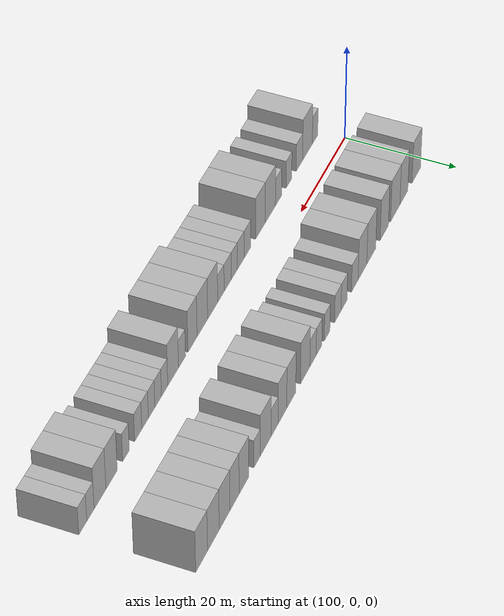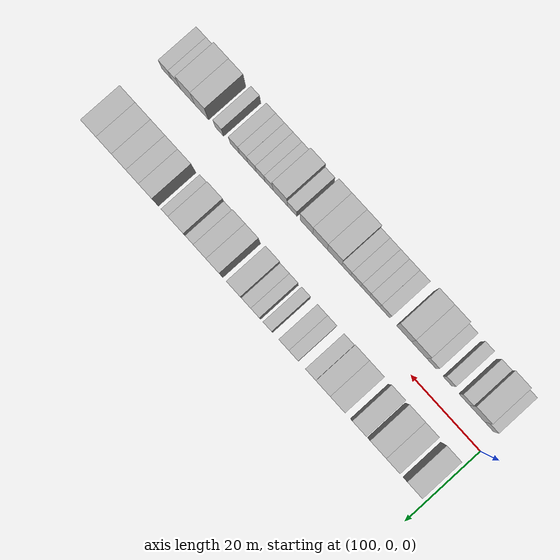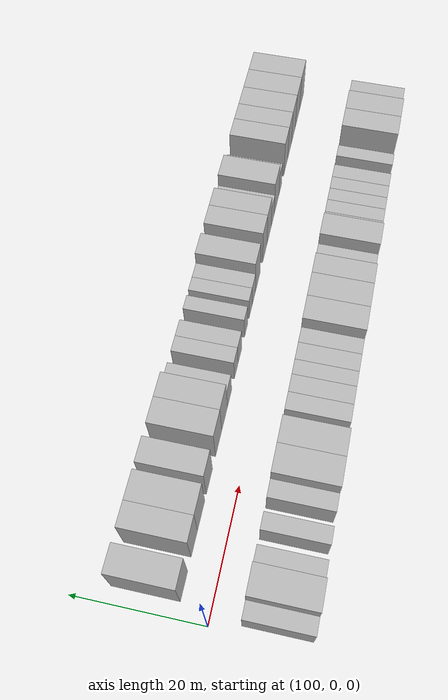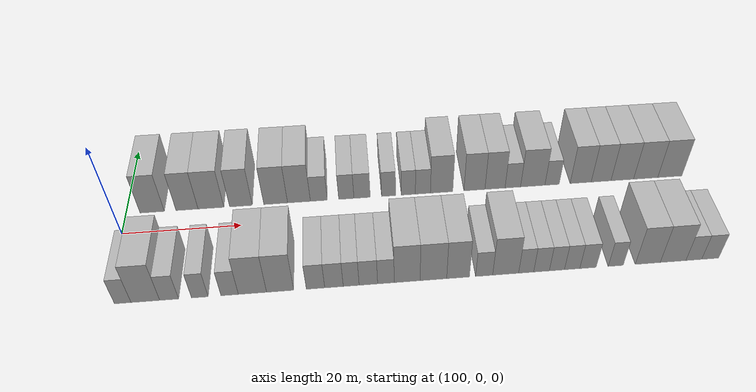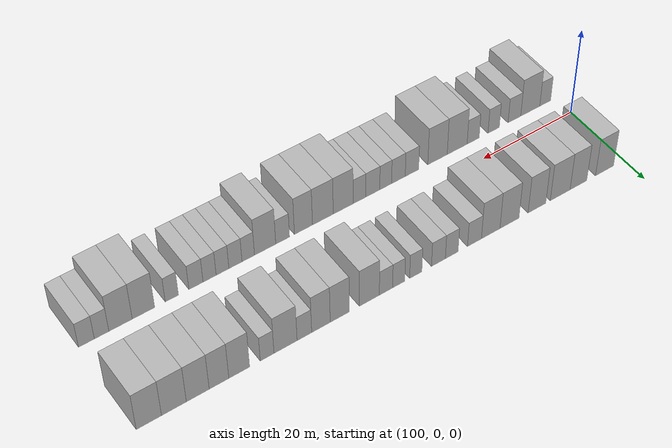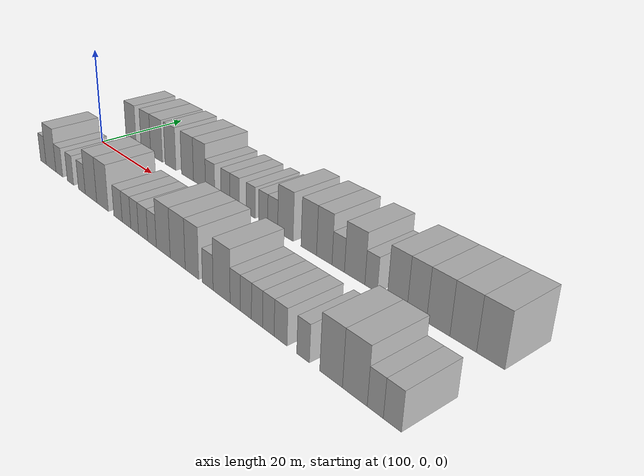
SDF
<sdf version="1.6">
 <world name="default">
  <model name="building_26">
   <static>1</static>
   <pose>104.4458 9.5000 0 0.000000 0.000000 1.570796</pose>
   <link name="link">
    <pose>0 0 4.50 0 0 0</pose>
    <collision name="collision"><geometry><box><size>10.0000 4.1483 9.0000</size></box></geometry></collision>
    <visual name="visual">
     <cast_shadows>0</cast_shadows>
     <geometry><box><size>10.0000 4.1483 9.0000</size></box></geometry>
     <material>
      <script>
       <uri>model://HANNAS_wall/materials/scripts</uri>
       <uri>model://HANNAS_wall/materials/textures</uri>
       <name>vrc/HANNAS_wall</name>
      </script>
     </material>
    </visual>
   </link>
  </model>
  <model name="building_27">
   <static>1</static>
   <pose>110.4118 9.5000 0 0.000000 0.000000 1.570796</pose>
   <link name="link">
    <pose>0 0 4.50 0 0 0</pose>
    <collision name="collision"><geometry><box><size>10.0000 3.7836 9.0000</size></box></geometry></collision>
    <visual name="visual">
     <cast_shadows>0</cast_shadows>
     <geometry><box><size>10.0000 3.7836 9.0000</size></box></geometry>
     <material>
      <script>
       <uri>model://HANNAS_wall/materials/scripts</uri>
       <uri>model://HANNAS_wall/materials/textures</uri>
       <name>vrc/HANNAS_wall</name>
      </script>
     </material>
    </visual>
   </link>
  </model>
  <model name="building_28">
   <static>1</static>
   <pose>114.5267 9.5000 0 0.000000 0.000000 1.570796</pose>
   <link name="link">
    <pose>0 0 4.50 0 0 0</pose>
    <collision name="collision"><geometry><box><size>10.0000 4.4463 9.0000</size></box></geometry></collision>
    <visual name="visual">
     <cast_shadows>0</cast_shadows>
     <geometry><box><size>10.0000 4.4463 9.0000</size></box></geometry>
     <material>
      <script>
       <uri>model://HANNAS_wall/materials/scripts</uri>
       <uri>model://HANNAS_wall/materials/textures</uri>
       <name>vrc/HANNAS_wall</name>
      </script>
     </material>
    </visual>
   </link>
  </model>
  <model name="building_29">
   <static>1</static>
   <pose>119.7096 9.5000 0 0.000000 0.000000 1.570796</pose>
   <link name="link">
    <pose>0 0 4.50 0 0 0</pose>
    <collision name="collision"><geometry><box><size>10.0000 3.9195 9.0000</size></box></geometry></collision>
    <visual name="visual">
     <cast_shadows>0</cast_shadows>
     <geometry><box><size>10.0000 3.9195 9.0000</size></box></geometry>
     <material>
      <script>
       <uri>model://HANNAS_wall/materials/scripts</uri>
       <uri>model://HANNAS_wall/materials/textures</uri>
       <name>vrc/HANNAS_wall</name>
      </script>
     </material>
    </visual>
   </link>
  </model>
  <model name="building_30">
   <static>1</static>
   <pose>125.7354 9.5000 0 0.000000 0.000000 1.570796</pose>
   <link name="link">
    <pose>0 0 4.50 0 0 0</pose>
    <collision name="collision"><geometry><box><size>10.0000 4.1321 9.0000</size></box></geometry></collision>
    <visual name="visual">
     <cast_shadows>0</cast_shadows>
     <geometry><box><size>10.0000 4.1321 9.0000</size></box></geometry>
     <material>
      <script>
       <uri>model://HANNAS_wall/materials/scripts</uri>
       <uri>model://HANNAS_wall/materials/textures</uri>
       <name>vrc/HANNAS_wall</name>
      </script>
     </material>
    </visual>
   </link>
  </model>
  <model name="building_31">
   <static>1</static>
   <pose>129.7963 9.5000 0 0.000000 0.000000 1.570796</pose>
   <link name="link">
    <pose>0 0 4.50 0 0 0</pose>
    <collision name="collision"><geometry><box><size>10.0000 3.9898 9.0000</size></box></geometry></collision>
    <visual name="visual">
     <cast_shadows>0</cast_shadows>
     <geometry><box><size>10.0000 3.9898 9.0000</size></box></geometry>
     <material>
      <script>
       <uri>model://HANNAS_wall/materials/scripts</uri>
       <uri>model://HANNAS_wall/materials/textures</uri>
       <name>vrc/HANNAS_wall</name>
      </script>
     </material>
    </visual>
   </link>
  </model>
  <model name="building_32">
   <static>1</static>
   <pose>133.2743 9.5000 0 0.000000 0.000000 1.570796</pose>
   <link name="link">
    <pose>0 0 3.00 0 0 0</pose>
    <collision name="collision"><geometry><box><size>10.0000 2.9662 6.0000</size></box></geometry></collision>
    <visual name="visual">
     <cast_shadows>0</cast_shadows>
     <geometry><box><size>10.0000 2.9662 6.0000</size></box></geometry>
     <material>
      <script>
       <uri>model://HANNAS_wall/materials/scripts</uri>
       <uri>model://HANNAS_wall/materials/textures</uri>
       <name>vrc/HANNAS_wall</name>
      </script>
     </material>
    </visual>
   </link>
  </model>
  <model name="building_33">
   <static>1</static>
   <pose>138.0981 9.5000 0 0.000000 0.000000 1.570796</pose>
   <link name="link">
    <pose>0 0 3.00 0 0 0</pose>
    <collision name="collision"><geometry><box><size>10.0000 2.6814 6.0000</size></box></geometry></collision>
    <visual name="visual">
     <cast_shadows>0</cast_shadows>
     <geometry><box><size>10.0000 2.6814 6.0000</size></box></geometry>
     <material>
      <script>
       <uri>model://HANNAS_wall/materials/scripts</uri>
       <uri>model://HANNAS_wall/materials/textures</uri>
       <name>vrc/HANNAS_wall</name>
      </script>
     </material>
    </visual>
   </link>
  </model>
  <model name="building_34">
   <static>1</static>
   <pose>140.8822 9.5000 0 0.000000 0.000000 1.570796</pose>
   <link name="link">
    <pose>0 0 3.00 0 0 0</pose>
    <collision name="collision"><geometry><box><size>10.0000 2.8869 6.0000</size></box></geometry></collision>
    <visual name="visual">
     <cast_shadows>0</cast_shadows>
     <geometry><box><size>10.0000 2.8869 6.0000</size></box></geometry>
     <material>
      <script>
       <uri>model://HANNAS_wall/materials/scripts</uri>
       <uri>model://HANNAS_wall/materials/textures</uri>
       <name>vrc/HANNAS_wall</name>
      </script>
     </material>
    </visual>
   </link>
  </model>
  <model name="building_35">
   <static>1</static>
   <pose>145.5830 9.5000 0 0.000000 0.000000 1.570796</pose>
   <link name="link">
    <pose>0 0 3.00 0 0 0</pose>
    <collision name="collision"><geometry><box><size>10.0000 2.5147 6.0000</size></box></geometry></collision>
    <visual name="visual">
     <cast_shadows>0</cast_shadows>
     <geometry><box><size>10.0000 2.5147 6.0000</size></box></geometry>
     <material>
      <script>
       <uri>model://HANNAS_wall/materials/scripts</uri>
       <uri>model://HANNAS_wall/materials/textures</uri>
       <name>vrc/HANNAS_wall</name>
      </script>
     </material>
    </visual>
   </link>
  </model>
  <model name="building_36">
   <static>1</static>
   <pose>149.0827 9.5000 0 0.000000 0.000000 1.570796</pose>
   <link name="link">
    <pose>0 0 3.00 0 0 0</pose>
    <collision name="collision"><geometry><box><size>10.0000 2.4847 6.0000</size></box></geometry></collision>
    <visual name="visual">
     <cast_shadows>0</cast_shadows>
     <geometry><box><size>10.0000 2.4847 6.0000</size></box></geometry>
     <material>
      <script>
       <uri>model://HANNAS_wall/materials/scripts</uri>
       <uri>model://HANNAS_wall/materials/textures</uri>
       <name>vrc/HANNAS_wall</name>
      </script>
     </material>
    </visual>
   </link>
  </model>
  <model name="building_37">
   <static>1</static>
   <pose>151.6666 9.5000 0 0.000000 0.000000 1.570796</pose>
   <link name="link">
    <pose>0 0 3.00 0 0 0</pose>
    <collision name="collision"><geometry><box><size>10.0000 2.6830 6.0000</size></box></geometry></collision>
    <visual name="visual">
     <cast_shadows>0</cast_shadows>
     <geometry><box><size>10.0000 2.6830 6.0000</size></box></geometry>
     <material>
      <script>
       <uri>model://HANNAS_wall/materials/scripts</uri>
       <uri>model://HANNAS_wall/materials/textures</uri>
       <name>vrc/HANNAS_wall</name>
      </script>
     </material>
    </visual>
   </link>
  </model>
  <model name="building_38">
   <static>1</static>
   <pose>155.0065 9.5000 0 0.000000 0.000000 1.570796</pose>
   <link name="link">
    <pose>0 0 4.50 0 0 0</pose>
    <collision name="collision"><geometry><box><size>10.0000 3.9968 9.0000</size></box></geometry></collision>
    <visual name="visual">
     <cast_shadows>0</cast_shadows>
     <geometry><box><size>10.0000 3.9968 9.0000</size></box></geometry>
     <material>
      <script>
       <uri>model://HANNAS_wall/materials/scripts</uri>
       <uri>model://HANNAS_wall/materials/textures</uri>
       <name>vrc/HANNAS_wall</name>
      </script>
     </material>
    </visual>
   </link>
  </model>
  <model name="building_39">
   <static>1</static>
   <pose>160.8924 9.5000 0 0.000000 0.000000 1.570796</pose>
   <link name="link">
    <pose>0 0 4.50 0 0 0</pose>
    <collision name="collision"><geometry><box><size>10.0000 3.7750 9.0000</size></box></geometry></collision>
    <visual name="visual">
     <cast_shadows>0</cast_shadows>
     <geometry><box><size>10.0000 3.7750 9.0000</size></box></geometry>
     <material>
      <script>
       <uri>model://HANNAS_wall/materials/scripts</uri>
       <uri>model://HANNAS_wall/materials/textures</uri>
       <name>vrc/HANNAS_wall</name>
      </script>
     </material>
    </visual>
   </link>
  </model>
  <model name="building_40">
   <static>1</static>
   <pose>164.5924 9.5000 0 0.000000 0.000000 1.570796</pose>
   <link name="link">
    <pose>0 0 4.50 0 0 0</pose>
    <collision name="collision"><geometry><box><size>10.0000 3.6249 9.0000</size></box></geometry></collision>
    <visual name="visual">
     <cast_shadows>0</cast_shadows>
     <geometry><box><size>10.0000 3.6249 9.0000</size></box></geometry>
     <material>
      <script>
       <uri>model://HANNAS_wall/materials/scripts</uri>
       <uri>model://HANNAS_wall/materials/textures</uri>
       <name>vrc/HANNAS_wall</name>
      </script>
     </material>
    </visual>
   </link>
  </model>
  <model name="building_41">
   <static>1</static>
   <pose>167.8116 9.5000 0 0.000000 0.000000 1.570796</pose>
   <link name="link">
    <pose>0 0 3.00 0 0 0</pose>
    <collision name="collision"><geometry><box><size>10.0000 2.8136 6.0000</size></box></geometry></collision>
    <visual name="visual">
     <cast_shadows>0</cast_shadows>
     <geometry><box><size>10.0000 2.8136 6.0000</size></box></geometry>
     <material>
      <script>
       <uri>model://HANNAS_wall/materials/scripts</uri>
       <uri>model://HANNAS_wall/materials/textures</uri>
       <name>vrc/HANNAS_wall</name>
      </script>
     </material>
    </visual>
   </link>
  </model>
  <model name="building_42">
   <static>1</static>
   <pose>171.4280 9.5000 0 0.000000 0.000000 1.570796</pose>
   <link name="link">
    <pose>0 0 4.50 0 0 0</pose>
    <collision name="collision"><geometry><box><size>10.0000 4.4192 9.0000</size></box></geometry></collision>
    <visual name="visual">
     <cast_shadows>0</cast_shadows>
     <geometry><box><size>10.0000 4.4192 9.0000</size></box></geometry>
     <material>
      <script>
       <uri>model://HANNAS_wall/materials/scripts</uri>
       <uri>model://HANNAS_wall/materials/textures</uri>
       <name>vrc/HANNAS_wall</name>
      </script>
     </material>
    </visual>
   </link>
  </model>
  <model name="building_43">
   <static>1</static>
   <pose>174.9370 9.5000 0 0.000000 0.000000 1.570796</pose>
   <link name="link">
    <pose>0 0 3.00 0 0 0</pose>
    <collision name="collision"><geometry><box><size>10.0000 2.5987 6.0000</size></box></geometry></collision>
    <visual name="visual">
     <cast_shadows>0</cast_shadows>
     <geometry><box><size>10.0000 2.5987 6.0000</size></box></geometry>
     <material>
      <script>
       <uri>model://HANNAS_wall/materials/scripts</uri>
       <uri>model://HANNAS_wall/materials/textures</uri>
       <name>vrc/HANNAS_wall</name>
      </script>
     </material>
    </visual>
   </link>
  </model>
  <model name="building_44">
   <static>1</static>
   <pose>180.1711 9.5000 0 0.000000 0.000000 1.570796</pose>
   <link name="link">
    <pose>0 0 4.50 0 0 0</pose>
    <collision name="collision"><geometry><box><size>10.0000 3.8695 9.0000</size></box></geometry></collision>
    <visual name="visual">
     <cast_shadows>0</cast_shadows>
     <geometry><box><size>10.0000 3.8695 9.0000</size></box></geometry>
     <material>
      <script>
       <uri>model://HANNAS_wall/materials/scripts</uri>
       <uri>model://HANNAS_wall/materials/textures</uri>
       <name>vrc/HANNAS_wall</name>
      </script>
     </material>
    </visual>
   </link>
  </model>
  <model name="building_45">
   <static>1</static>
   <pose>183.9166 9.5000 0 0.000000 0.000000 1.570796</pose>
   <link name="link">
    <pose>0 0 4.50 0 0 0</pose>
    <collision name="collision"><geometry><box><size>10.0000 3.6216 9.0000</size></box></geometry></collision>
    <visual name="visual">
     <cast_shadows>0</cast_shadows>
     <geometry><box><size>10.0000 3.6216 9.0000</size></box></geometry>
     <material>
      <script>
       <uri>model://HANNAS_wall/materials/scripts</uri>
       <uri>model://HANNAS_wall/materials/textures</uri>
       <name>vrc/HANNAS_wall</name>
      </script>
     </material>
    </visual>
   </link>
  </model>
  <model name="building_46">
   <static>1</static>
   <pose>187.8090 9.5000 0 0.000000 0.000000 1.570796</pose>
   <link name="link">
    <pose>0 0 4.50 0 0 0</pose>
    <collision name="collision"><geometry><box><size>10.0000 4.1631 9.0000</size></box></geometry></collision>
    <visual name="visual">
     <cast_shadows>0</cast_shadows>
     <geometry><box><size>10.0000 4.1631 9.0000</size></box></geometry>
     <material>
      <script>
       <uri>model://HANNAS_wall/materials/scripts</uri>
       <uri>model://HANNAS_wall/materials/textures</uri>
       <name>vrc/HANNAS_wall</name>
      </script>
     </material>
    </visual>
   </link>
  </model>
  <model name="building_47">
   <static>1</static>
   <pose>192.1298 9.5000 0 0.000000 0.000000 1.570796</pose>
   <link name="link">
    <pose>0 0 4.50 0 0 0</pose>
    <collision name="collision"><geometry><box><size>10.0000 4.4784 9.0000</size></box></geometry></collision>
    <visual name="visual">
     <cast_shadows>0</cast_shadows>
     <geometry><box><size>10.0000 4.4784 9.0000</size></box></geometry>
     <material>
      <script>
       <uri>model://HANNAS_wall/materials/scripts</uri>
       <uri>model://HANNAS_wall/materials/textures</uri>
       <name>vrc/HANNAS_wall</name>
      </script>
     </material>
    </visual>
   </link>
  </model>
  <model name="building_48">
   <static>1</static>
   <pose>196.6167 9.5000 0 0.000000 0.000000 1.570796</pose>
   <link name="link">
    <pose>0 0 4.50 0 0 0</pose>
    <collision name="collision"><geometry><box><size>10.0000 4.4955 9.0000</size></box></geometry></collision>
    <visual name="visual">
     <cast_shadows>0</cast_shadows>
     <geometry><box><size>10.0000 4.4955 9.0000</size></box></geometry>
     <material>
      <script>
       <uri>model://HANNAS_wall/materials/scripts</uri>
       <uri>model://HANNAS_wall/materials/textures</uri>
       <name>vrc/HANNAS_wall</name>
      </script>
     </material>
    </visual>
   </link>
  </model>
  <model name="building_74">
   <static>1</static>
   <pose>102.3624 -9.5000 0 0.000000 0.000000 1.570796</pose>
   <link name="link">
    <pose>0 0 3.00 0 0 0</pose>
    <collision name="collision"><geometry><box><size>10.0000 2.5468 6.0000</size></box></geometry></collision>
    <visual name="visual">
     <cast_shadows>0</cast_shadows>
     <geometry><box><size>10.0000 2.5468 6.0000</size></box></geometry>
     <material>
      <script>
       <uri>model://HANNAS_wall/materials/scripts</uri>
       <uri>model://HANNAS_wall/materials/textures</uri>
       <name>vrc/HANNAS_wall</name>
      </script>
     </material>
    </visual>
   </link>
  </model>
  <model name="building_75">
   <static>1</static>
   <pose>105.8518 -9.5000 0 0.000000 0.000000 1.570796</pose>
   <link name="link">
    <pose>0 0 4.50 0 0 0</pose>
    <collision name="collision"><geometry><box><size>10.0000 4.4319 9.0000</size></box></geometry></collision>
    <visual name="visual">
     <cast_shadows>0</cast_shadows>
     <geometry><box><size>10.0000 4.4319 9.0000</size></box></geometry>
     <material>
      <script>
       <uri>model://HANNAS_wall/materials/scripts</uri>
       <uri>model://HANNAS_wall/materials/textures</uri>
       <name>vrc/HANNAS_wall</name>
      </script>
     </material>
    </visual>
   </link>
  </model>
  <model name="building_76">
   <static>1</static>
   <pose>109.5304 -9.5000 0 0.000000 0.000000 1.570796</pose>
   <link name="link">
    <pose>0 0 3.00 0 0 0</pose>
    <collision name="collision"><geometry><box><size>10.0000 2.9253 6.0000</size></box></geometry></collision>
    <visual name="visual">
     <cast_shadows>0</cast_shadows>
     <geometry><box><size>10.0000 2.9253 6.0000</size></box></geometry>
     <material>
      <script>
       <uri>model://HANNAS_wall/materials/scripts</uri>
       <uri>model://HANNAS_wall/materials/textures</uri>
       <name>vrc/HANNAS_wall</name>
      </script>
     </material>
    </visual>
   </link>
  </model>
  <model name="building_77">
   <static>1</static>
   <pose>114.2888 -9.5000 0 0.000000 0.000000 1.570796</pose>
   <link name="link">
    <pose>0 0 3.00 0 0 0</pose>
    <collision name="collision"><geometry><box><size>10.0000 2.5916 6.0000</size></box></geometry></collision>
    <visual name="visual">
     <cast_shadows>0</cast_shadows>
     <geometry><box><size>10.0000 2.5916 6.0000</size></box></geometry>
     <material>
      <script>
       <uri>model://HANNAS_wall/materials/scripts</uri>
       <uri>model://HANNAS_wall/materials/textures</uri>
       <name>vrc/HANNAS_wall</name>
      </script>
     </material>
    </visual>
   </link>
  </model>
  <model name="building_78">
   <static>1</static>
   <pose>118.9452 -9.5000 0 0.000000 0.000000 1.570796</pose>
   <link name="link">
    <pose>0 0 3.00 0 0 0</pose>
    <collision name="collision"><geometry><box><size>10.0000 2.7211 6.0000</size></box></geometry></collision>
    <visual name="visual">
     <cast_shadows>0</cast_shadows>
     <geometry><box><size>10.0000 2.7211 6.0000</size></box></geometry>
     <material>
      <script>
       <uri>model://HANNAS_wall/materials/scripts</uri>
       <uri>model://HANNAS_wall/materials/textures</uri>
       <name>vrc/HANNAS_wall</name>
      </script>
     </material>
    </visual>
   </link>
  </model>
  <model name="building_79">
   <static>1</static>
   <pose>122.5248 -9.5000 0 0.000000 0.000000 1.570796</pose>
   <link name="link">
    <pose>0 0 4.50 0 0 0</pose>
    <collision name="collision"><geometry><box><size>10.0000 4.4380 9.0000</size></box></geometry></collision>
    <visual name="visual">
     <cast_shadows>0</cast_shadows>
     <geometry><box><size>10.0000 4.4380 9.0000</size></box></geometry>
     <material>
      <script>
       <uri>model://HANNAS_wall/materials/scripts</uri>
       <uri>model://HANNAS_wall/materials/textures</uri>
       <name>vrc/HANNAS_wall</name>
      </script>
     </material>
    </visual>
   </link>
  </model>
  <model name="building_80">
   <static>1</static>
   <pose>126.8825 -9.5000 0 0.000000 0.000000 1.570796</pose>
   <link name="link">
    <pose>0 0 4.50 0 0 0</pose>
    <collision name="collision"><geometry><box><size>10.0000 4.2776 9.0000</size></box></geometry></collision>
    <visual name="visual">
     <cast_shadows>0</cast_shadows>
     <geometry><box><size>10.0000 4.2776 9.0000</size></box></geometry>
     <material>
      <script>
       <uri>model://HANNAS_wall/materials/scripts</uri>
       <uri>model://HANNAS_wall/materials/textures</uri>
       <name>vrc/HANNAS_wall</name>
      </script>
     </material>
    </visual>
   </link>
  </model>
  <model name="building_81">
   <static>1</static>
   <pose>132.4811 -9.5000 0 0.000000 0.000000 1.570796</pose>
   <link name="link">
    <pose>0 0 3.00 0 0 0</pose>
    <collision name="collision"><geometry><box><size>10.0000 2.9197 6.0000</size></box></geometry></collision>
    <visual name="visual">
     <cast_shadows>0</cast_shadows>
     <geometry><box><size>10.0000 2.9197 6.0000</size></box></geometry>
     <material>
      <script>
       <uri>model://HANNAS_wall/materials/scripts</uri>
       <uri>model://HANNAS_wall/materials/textures</uri>
       <name>vrc/HANNAS_wall</name>
      </script>
     </material>
    </visual>
   </link>
  </model>
  <model name="building_82">
   <static>1</static>
   <pose>135.4111 -9.5000 0 0.000000 0.000000 1.570796</pose>
   <link name="link">
    <pose>0 0 3.00 0 0 0</pose>
    <collision name="collision"><geometry><box><size>10.0000 2.9402 6.0000</size></box></geometry></collision>
    <visual name="visual">
     <cast_shadows>0</cast_shadows>
     <geometry><box><size>10.0000 2.9402 6.0000</size></box></geometry>
     <material>
      <script>
       <uri>model://HANNAS_wall/materials/scripts</uri>
       <uri>model://HANNAS_wall/materials/textures</uri>
       <name>vrc/HANNAS_wall</name>
      </script>
     </material>
    </visual>
   </link>
  </model>
  <model name="building_83">
   <static>1</static>
   <pose>138.1497 -9.5000 0 0.000000 0.000000 1.570796</pose>
   <link name="link">
    <pose>0 0 3.00 0 0 0</pose>
    <collision name="collision"><geometry><box><size>10.0000 2.5371 6.0000</size></box></geometry></collision>
    <visual name="visual">
     <cast_shadows>0</cast_shadows>
     <geometry><box><size>10.0000 2.5371 6.0000</size></box></geometry>
     <material>
      <script>
       <uri>model://HANNAS_wall/materials/scripts</uri>
       <uri>model://HANNAS_wall/materials/textures</uri>
       <name>vrc/HANNAS_wall</name>
      </script>
     </material>
    </visual>
   </link>
  </model>
  <model name="building_84">
   <static>1</static>
   <pose>140.8972 -9.5000 0 0.000000 0.000000 1.570796</pose>
   <link name="link">
    <pose>0 0 3.00 0 0 0</pose>
    <collision name="collision"><geometry><box><size>10.0000 2.9578 6.0000</size></box></geometry></collision>
    <visual name="visual">
     <cast_shadows>0</cast_shadows>
     <geometry><box><size>10.0000 2.9578 6.0000</size></box></geometry>
     <material>
      <script>
       <uri>model://HANNAS_wall/materials/scripts</uri>
       <uri>model://HANNAS_wall/materials/textures</uri>
       <name>vrc/HANNAS_wall</name>
      </script>
     </material>
    </visual>
   </link>
  </model>
  <model name="building_85">
   <static>1</static>
   <pose>143.7158 -9.5000 0 0.000000 0.000000 1.570796</pose>
   <link name="link">
    <pose>0 0 3.00 0 0 0</pose>
    <collision name="collision"><geometry><box><size>10.0000 2.6794 6.0000</size></box></geometry></collision>
    <visual name="visual">
     <cast_shadows>0</cast_shadows>
     <geometry><box><size>10.0000 2.6794 6.0000</size></box></geometry>
     <material>
      <script>
       <uri>model://HANNAS_wall/materials/scripts</uri>
       <uri>model://HANNAS_wall/materials/textures</uri>
       <name>vrc/HANNAS_wall</name>
      </script>
     </material>
    </visual>
   </link>
  </model>
  <model name="building_86">
   <static>1</static>
   <pose>147.1366 -9.5000 0 0.000000 0.000000 1.570796</pose>
   <link name="link">
    <pose>0 0 4.50 0 0 0</pose>
    <collision name="collision"><geometry><box><size>10.0000 4.1622 9.0000</size></box></geometry></collision>
    <visual name="visual">
     <cast_shadows>0</cast_shadows>
     <geometry><box><size>10.0000 4.1622 9.0000</size></box></geometry>
     <material>
      <script>
       <uri>model://HANNAS_wall/materials/scripts</uri>
       <uri>model://HANNAS_wall/materials/textures</uri>
       <name>vrc/HANNAS_wall</name>
      </script>
     </material>
    </visual>
   </link>
  </model>
  <model name="building_87">
   <static>1</static>
   <pose>151.3645 -9.5000 0 0.000000 0.000000 1.570796</pose>
   <link name="link">
    <pose>0 0 4.50 0 0 0</pose>
    <collision name="collision"><geometry><box><size>10.0000 4.2937 9.0000</size></box></geometry></collision>
    <visual name="visual">
     <cast_shadows>0</cast_shadows>
     <geometry><box><size>10.0000 4.2937 9.0000</size></box></geometry>
     <material>
      <script>
       <uri>model://HANNAS_wall/materials/scripts</uri>
       <uri>model://HANNAS_wall/materials/textures</uri>
       <name>vrc/HANNAS_wall</name>
      </script>
     </material>
    </visual>
   </link>
  </model>
  <model name="building_88">
   <static>1</static>
   <pose>155.3571 -9.5000 0 0.000000 0.000000 1.570796</pose>
   <link name="link">
    <pose>0 0 4.50 0 0 0</pose>
    <collision name="collision"><geometry><box><size>10.0000 3.6915 9.0000</size></box></geometry></collision>
    <visual name="visual">
     <cast_shadows>0</cast_shadows>
     <geometry><box><size>10.0000 3.6915 9.0000</size></box></geometry>
     <material>
      <script>
       <uri>model://HANNAS_wall/materials/scripts</uri>
       <uri>model://HANNAS_wall/materials/textures</uri>
       <name>vrc/HANNAS_wall</name>
      </script>
     </material>
    </visual>
   </link>
  </model>
  <model name="building_89">
   <static>1</static>
   <pose>159.5943 -9.5000 0 0.000000 0.000000 1.570796</pose>
   <link name="link">
    <pose>0 0 3.00 0 0 0</pose>
    <collision name="collision"><geometry><box><size>10.0000 2.7829 6.0000</size></box></geometry></collision>
    <visual name="visual">
     <cast_shadows>0</cast_shadows>
     <geometry><box><size>10.0000 2.7829 6.0000</size></box></geometry>
     <material>
      <script>
       <uri>model://HANNAS_wall/materials/scripts</uri>
       <uri>model://HANNAS_wall/materials/textures</uri>
       <name>vrc/HANNAS_wall</name>
      </script>
     </material>
    </visual>
   </link>
  </model>
  <model name="building_90">
   <static>1</static>
   <pose>163.1101 -9.5000 0 0.000000 0.000000 1.570796</pose>
   <link name="link">
    <pose>0 0 4.50 0 0 0</pose>
    <collision name="collision"><geometry><box><size>10.0000 4.2488 9.0000</size></box></geometry></collision>
    <visual name="visual">
     <cast_shadows>0</cast_shadows>
     <geometry><box><size>10.0000 4.2488 9.0000</size></box></geometry>
     <material>
      <script>
       <uri>model://HANNAS_wall/materials/scripts</uri>
       <uri>model://HANNAS_wall/materials/textures</uri>
       <name>vrc/HANNAS_wall</name>
      </script>
     </material>
    </visual>
   </link>
  </model>
  <model name="building_91">
   <static>1</static>
   <pose>166.4711 -9.5000 0 0.000000 0.000000 1.570796</pose>
   <link name="link">
    <pose>0 0 3.00 0 0 0</pose>
    <collision name="collision"><geometry><box><size>10.0000 2.4732 6.0000</size></box></geometry></collision>
    <visual name="visual">
     <cast_shadows>0</cast_shadows>
     <geometry><box><size>10.0000 2.4732 6.0000</size></box></geometry>
     <material>
      <script>
       <uri>model://HANNAS_wall/materials/scripts</uri>
       <uri>model://HANNAS_wall/materials/textures</uri>
       <name>vrc/HANNAS_wall</name>
      </script>
     </material>
    </visual>
   </link>
  </model>
  <model name="building_92">
   <static>1</static>
   <pose>168.9959 -9.5000 0 0.000000 0.000000 1.570796</pose>
   <link name="link">
    <pose>0 0 3.00 0 0 0</pose>
    <collision name="collision"><geometry><box><size>10.0000 2.5764 6.0000</size></box></geometry></collision>
    <visual name="visual">
     <cast_shadows>0</cast_shadows>
     <geometry><box><size>10.0000 2.5764 6.0000</size></box></geometry>
     <material>
      <script>
       <uri>model://HANNAS_wall/materials/scripts</uri>
       <uri>model://HANNAS_wall/materials/textures</uri>
       <name>vrc/HANNAS_wall</name>
      </script>
     </material>
    </visual>
   </link>
  </model>
  <model name="building_93">
   <static>1</static>
   <pose>171.5322 -9.5000 0 0.000000 0.000000 1.570796</pose>
   <link name="link">
    <pose>0 0 3.00 0 0 0</pose>
    <collision name="collision"><geometry><box><size>10.0000 2.4962 6.0000</size></box></geometry></collision>
    <visual name="visual">
     <cast_shadows>0</cast_shadows>
     <geometry><box><size>10.0000 2.4962 6.0000</size></box></geometry>
     <material>
      <script>
       <uri>model://HANNAS_wall/materials/scripts</uri>
       <uri>model://HANNAS_wall/materials/textures</uri>
       <name>vrc/HANNAS_wall</name>
      </script>
     </material>
    </visual>
   </link>
  </model>
  <model name="building_94">
   <static>1</static>
   <pose>174.0500 -9.5000 0 0.000000 0.000000 1.570796</pose>
   <link name="link">
    <pose>0 0 3.00 0 0 0</pose>
    <collision name="collision"><geometry><box><size>10.0000 2.5393 6.0000</size></box></geometry></collision>
    <visual name="visual">
     <cast_shadows>0</cast_shadows>
     <geometry><box><size>10.0000 2.5393 6.0000</size></box></geometry>
     <material>
      <script>
       <uri>model://HANNAS_wall/materials/scripts</uri>
       <uri>model://HANNAS_wall/materials/textures</uri>
       <name>vrc/HANNAS_wall</name>
      </script>
     </material>
    </visual>
   </link>
  </model>
  <model name="building_95">
   <static>1</static>
   <pose>176.6824 -9.5000 0 0.000000 0.000000 1.570796</pose>
   <link name="link">
    <pose>0 0 3.00 0 0 0</pose>
    <collision name="collision"><geometry><box><size>10.0000 2.7256 6.0000</size></box></geometry></collision>
    <visual name="visual">
     <cast_shadows>0</cast_shadows>
     <geometry><box><size>10.0000 2.7256 6.0000</size></box></geometry>
     <material>
      <script>
       <uri>model://HANNAS_wall/materials/scripts</uri>
       <uri>model://HANNAS_wall/materials/textures</uri>
       <name>vrc/HANNAS_wall</name>
      </script>
     </material>
    </visual>
   </link>
  </model>
  <model name="building_96">
   <static>1</static>
   <pose>181.3002 -9.5000 0 0.000000 0.000000 1.570796</pose>
   <link name="link">
    <pose>0 0 3.00 0 0 0</pose>
    <collision name="collision"><geometry><box><size>10.0000 2.5100 6.0000</size></box></geometry></collision>
    <visual name="visual">
     <cast_shadows>0</cast_shadows>
     <geometry><box><size>10.0000 2.5100 6.0000</size></box></geometry>
     <material>
      <script>
       <uri>model://HANNAS_wall/materials/scripts</uri>
       <uri>model://HANNAS_wall/materials/textures</uri>
       <name>vrc/HANNAS_wall</name>
      </script>
     </material>
    </visual>
   </link>
  </model>
  <model name="building_97">
   <static>1</static>
   <pose>186.6529 -9.5000 0 0.000000 0.000000 1.570796</pose>
   <link name="link">
    <pose>0 0 4.50 0 0 0</pose>
    <collision name="collision"><geometry><box><size>10.0000 4.1954 9.0000</size></box></geometry></collision>
    <visual name="visual">
     <cast_shadows>0</cast_shadows>
     <geometry><box><size>10.0000 4.1954 9.0000</size></box></geometry>
     <material>
      <script>
       <uri>model://HANNAS_wall/materials/scripts</uri>
       <uri>model://HANNAS_wall/materials/textures</uri>
       <name>vrc/HANNAS_wall</name>
      </script>
     </material>
    </visual>
   </link>
  </model>
  <model name="building_98">
   <static>1</static>
   <pose>190.9106 -9.5000 0 0.000000 0.000000 1.570796</pose>
   <link name="link">
    <pose>0 0 4.50 0 0 0</pose>
    <collision name="collision"><geometry><box><size>10.0000 4.3199 9.0000</size></box></geometry></collision>
    <visual name="visual">
     <cast_shadows>0</cast_shadows>
     <geometry><box><size>10.0000 4.3199 9.0000</size></box></geometry>
     <material>
      <script>
       <uri>model://HANNAS_wall/materials/scripts</uri>
       <uri>model://HANNAS_wall/materials/textures</uri>
       <name>vrc/HANNAS_wall</name>
      </script>
     </material>
    </visual>
   </link>
  </model>
  <model name="building_99">
   <static>1</static>
   <pose>194.4035 -9.5000 0 0.000000 0.000000 1.570796</pose>
   <link name="link">
    <pose>0 0 3.00 0 0 0</pose>
    <collision name="collision"><geometry><box><size>10.0000 2.6659 6.0000</size></box></geometry></collision>
    <visual name="visual">
     <cast_shadows>0</cast_shadows>
     <geometry><box><size>10.0000 2.6659 6.0000</size></box></geometry>
     <material>
      <script>
       <uri>model://HANNAS_wall/materials/scripts</uri>
       <uri>model://HANNAS_wall/materials/textures</uri>
       <name>vrc/HANNAS_wall</name>
      </script>
     </material>
    </visual>
   </link>
  </model>
  <model name="building_100">
   <static>1</static>
   <pose>197.1778 -9.5000 0 0.000000 0.000000 1.570796</pose>
   <link name="link">
    <pose>0 0 3.00 0 0 0</pose>
    <collision name="collision"><geometry><box><size>10.0000 2.8828 6.0000</size></box></geometry></collision>
    <visual name="visual">
     <cast_shadows>0</cast_shadows>
     <geometry><box><size>10.0000 2.8828 6.0000</size></box></geometry>
     <material>
      <script>
       <uri>model://HANNAS_wall/materials/scripts</uri>
       <uri>model://HANNAS_wall/materials/textures</uri>
       <name>vrc/HANNAS_wall</name>
      </script>
     </material>
    </visual>
   </link>
  </model>
 </world>
</sdf>
